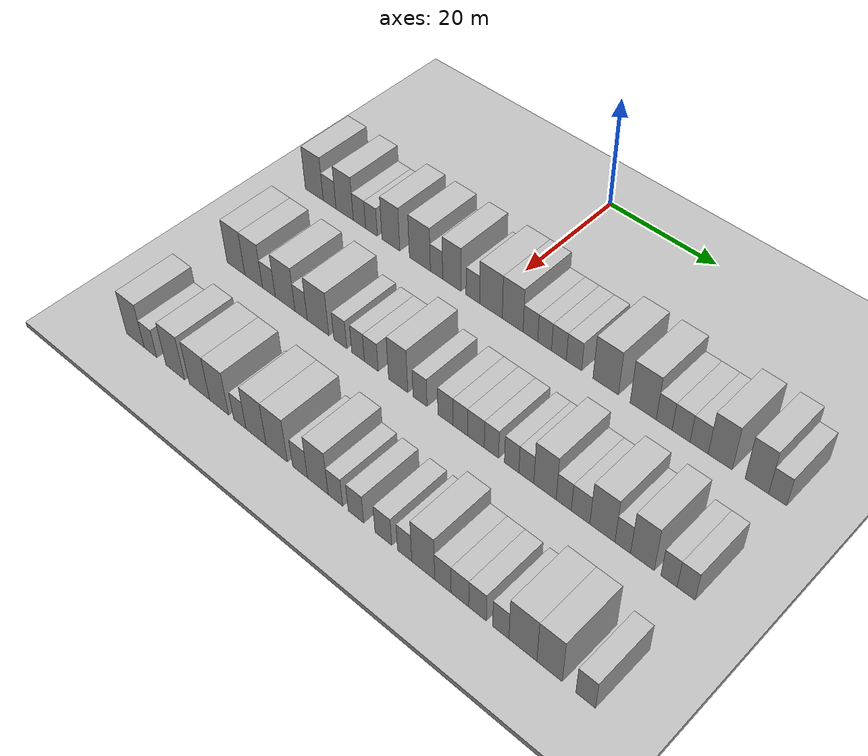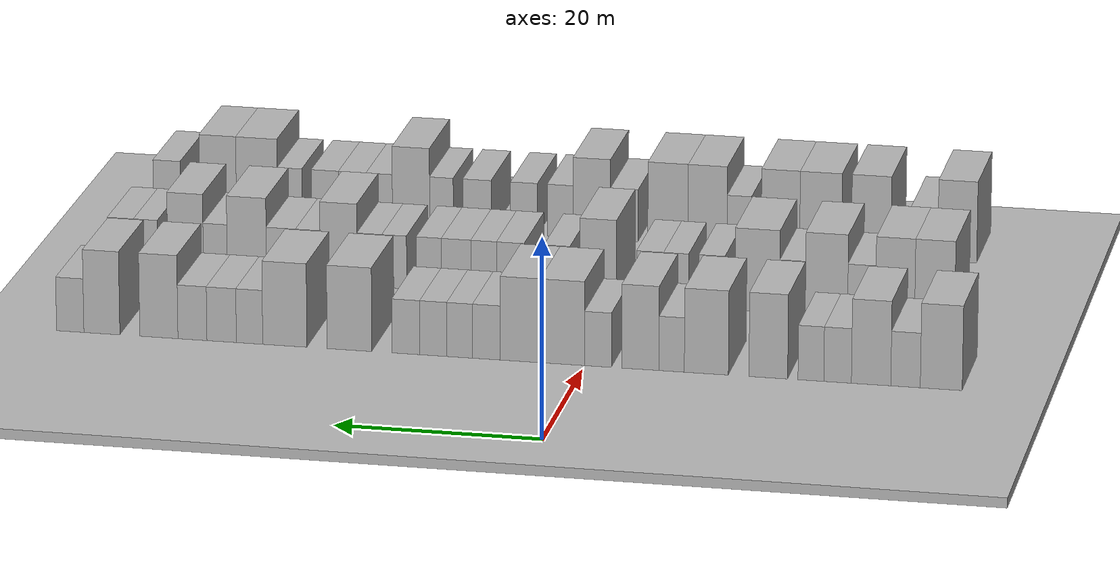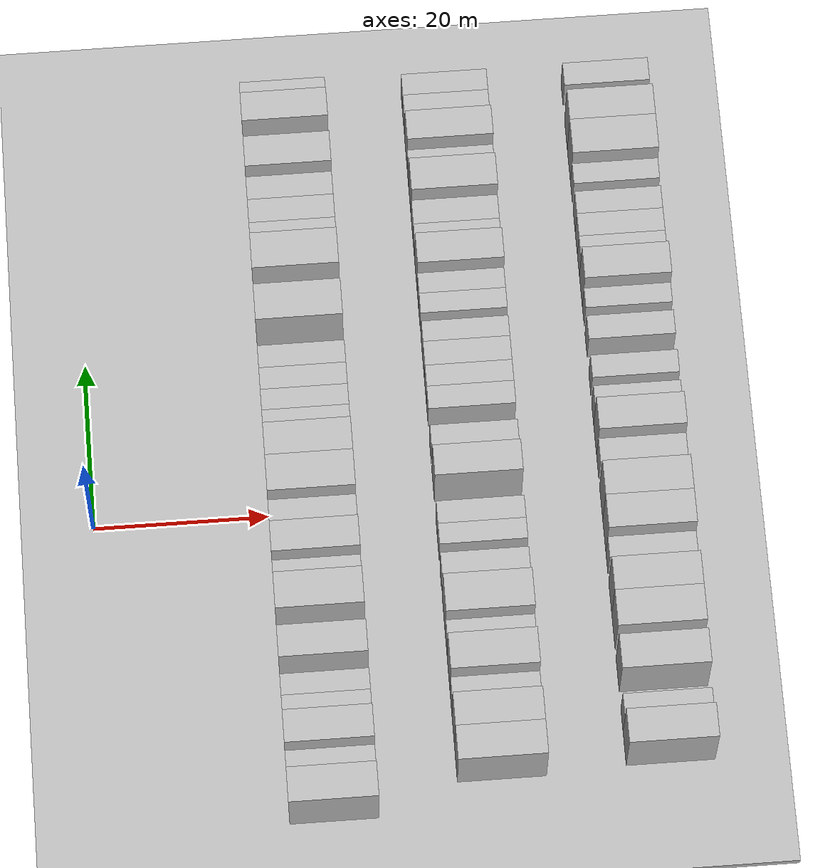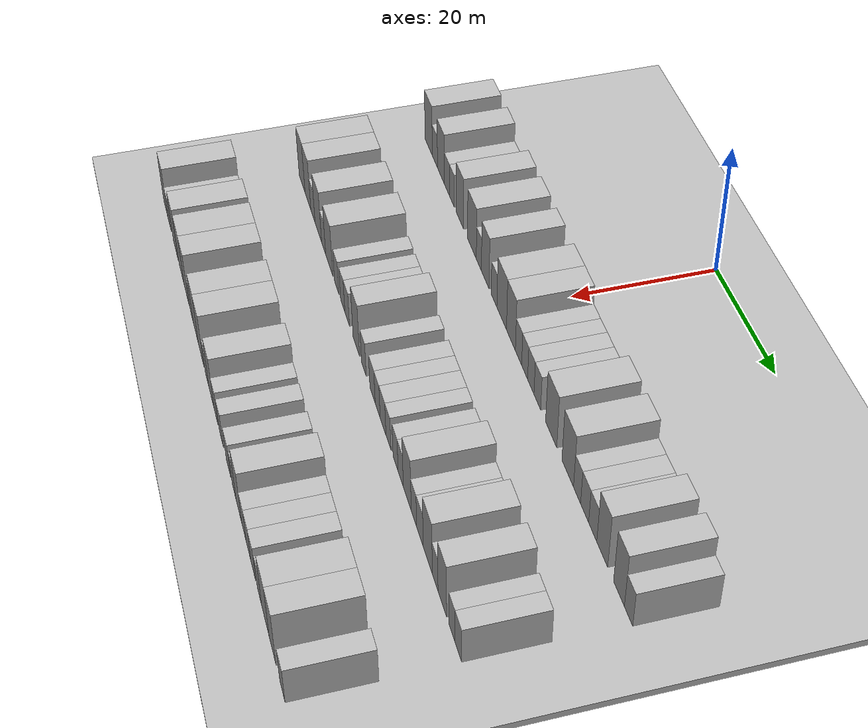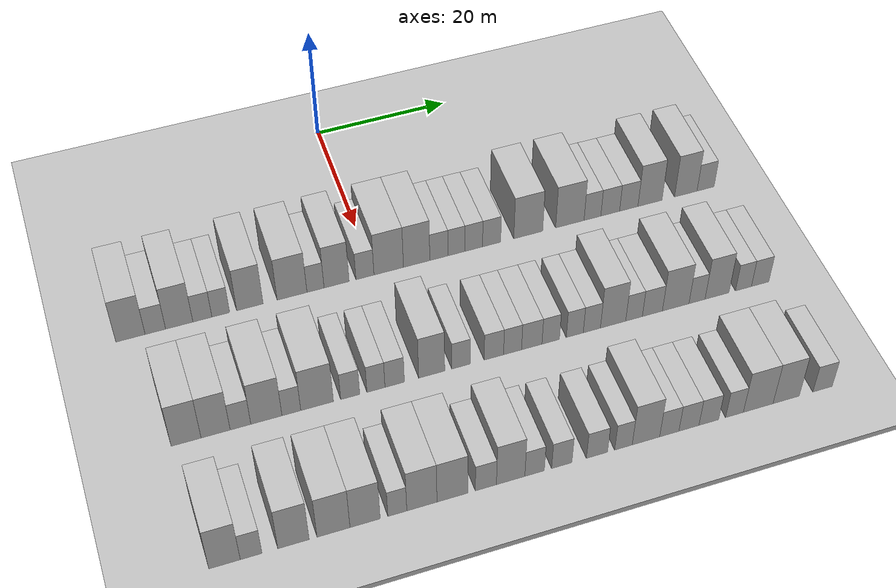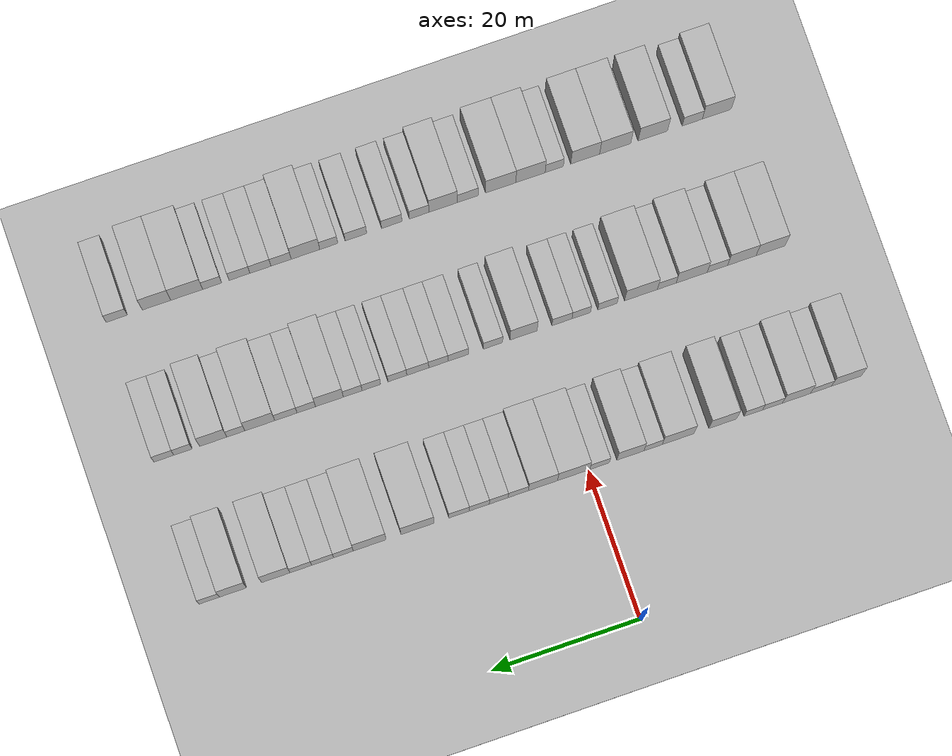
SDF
<sdf version="1.6">
 <world name="default">
  <include><name>ground_plane_1</name><uri>model://HANNAS_ground_plane</uri></include>
  <include>
   <name>ground_plane_2</name>
   <uri>model://HANNAS_ground_plane</uri>
   <pose>100 0 0  0 0 0</pose>
  </include>
  <model name="building_47">
   <static>1</static>
   <pose>25.0000 -34.7910 0 0.000000 0.000000 0.000000</pose>
   <link name="link">
    <pose>0 0 4.50 0 0 0</pose>
    <collision name="collision"><geometry><box><size>10.0000 4.0316 9.0000</size></box></geometry></collision>
    <visual name="visual">
     <cast_shadows>0</cast_shadows>
     <geometry><box><size>10.0000 4.0316 9.0000</size></box></geometry>
     <material>
      <script>
       <uri>model://HANNAS_wall/materials/scripts</uri>
       <uri>model://HANNAS_wall/materials/textures</uri>
       <name>vrc/HANNAS_wall</name>
      </script>
     </material>
    </visual>
   </link>
  </model>
  <model name="building_48">
   <static>1</static>
   <pose>25.0000 -31.3547 0 0.000000 0.000000 0.000000</pose>
   <link name="link">
    <pose>0 0 3.00 0 0 0</pose>
    <collision name="collision"><geometry><box><size>10.0000 2.8410 6.0000</size></box></geometry></collision>
    <visual name="visual">
     <cast_shadows>0</cast_shadows>
     <geometry><box><size>10.0000 2.8410 6.0000</size></box></geometry>
     <material>
      <script>
       <uri>model://HANNAS_wall/materials/scripts</uri>
       <uri>model://HANNAS_wall/materials/textures</uri>
       <name>vrc/HANNAS_wall</name>
      </script>
     </material>
    </visual>
   </link>
  </model>
  <model name="building_49">
   <static>1</static>
   <pose>25.0000 -28.0334 0 0.000000 0.000000 0.000000</pose>
   <link name="link">
    <pose>0 0 4.50 0 0 0</pose>
    <collision name="collision"><geometry><box><size>10.0000 3.8015 9.0000</size></box></geometry></collision>
    <visual name="visual">
     <cast_shadows>0</cast_shadows>
     <geometry><box><size>10.0000 3.8015 9.0000</size></box></geometry>
     <material>
      <script>
       <uri>model://HANNAS_wall/materials/scripts</uri>
       <uri>model://HANNAS_wall/materials/textures</uri>
       <name>vrc/HANNAS_wall</name>
      </script>
     </material>
    </visual>
   </link>
  </model>
  <model name="building_50">
   <static>1</static>
   <pose>25.0000 -24.7990 0 0.000000 0.000000 0.000000</pose>
   <link name="link">
    <pose>0 0 3.00 0 0 0</pose>
    <collision name="collision"><geometry><box><size>10.0000 2.6674 6.0000</size></box></geometry></collision>
    <visual name="visual">
     <cast_shadows>0</cast_shadows>
     <geometry><box><size>10.0000 2.6674 6.0000</size></box></geometry>
     <material>
      <script>
       <uri>model://HANNAS_wall/materials/scripts</uri>
       <uri>model://HANNAS_wall/materials/textures</uri>
       <name>vrc/HANNAS_wall</name>
      </script>
     </material>
    </visual>
   </link>
  </model>
  <model name="building_51">
   <static>1</static>
   <pose>25.0000 -22.2155 0 0.000000 0.000000 0.000000</pose>
   <link name="link">
    <pose>0 0 3.00 0 0 0</pose>
    <collision name="collision"><geometry><box><size>10.0000 2.4995 6.0000</size></box></geometry></collision>
    <visual name="visual">
     <cast_shadows>0</cast_shadows>
     <geometry><box><size>10.0000 2.4995 6.0000</size></box></geometry>
     <material>
      <script>
       <uri>model://HANNAS_wall/materials/scripts</uri>
       <uri>model://HANNAS_wall/materials/textures</uri>
       <name>vrc/HANNAS_wall</name>
      </script>
     </material>
    </visual>
   </link>
  </model>
  <model name="building_52">
   <static>1</static>
   <pose>25.0000 -18.0895 0 0.000000 0.000000 0.000000</pose>
   <link name="link">
    <pose>0 0 4.50 0 0 0</pose>
    <collision name="collision"><geometry><box><size>10.0000 3.7524 9.0000</size></box></geometry></collision>
    <visual name="visual">
     <cast_shadows>0</cast_shadows>
     <geometry><box><size>10.0000 3.7524 9.0000</size></box></geometry>
     <material>
      <script>
       <uri>model://HANNAS_wall/materials/scripts</uri>
       <uri>model://HANNAS_wall/materials/textures</uri>
       <name>vrc/HANNAS_wall</name>
      </script>
     </material>
    </visual>
   </link>
  </model>
  <model name="building_53">
   <static>1</static>
   <pose>25.0000 -12.0707 0 0.000000 0.000000 0.000000</pose>
   <link name="link">
    <pose>0 0 4.50 0 0 0</pose>
    <collision name="collision"><geometry><box><size>10.0000 4.2852 9.0000</size></box></geometry></collision>
    <visual name="visual">
     <cast_shadows>0</cast_shadows>
     <geometry><box><size>10.0000 4.2852 9.0000</size></box></geometry>
     <material>
      <script>
       <uri>model://HANNAS_wall/materials/scripts</uri>
       <uri>model://HANNAS_wall/materials/textures</uri>
       <name>vrc/HANNAS_wall</name>
      </script>
     </material>
    </visual>
   </link>
  </model>
  <model name="building_54">
   <static>1</static>
   <pose>25.0000 -8.6924 0 0.000000 0.000000 0.000000</pose>
   <link name="link">
    <pose>0 0 3.00 0 0 0</pose>
    <collision name="collision"><geometry><box><size>10.0000 2.4713 6.0000</size></box></geometry></collision>
    <visual name="visual">
     <cast_shadows>0</cast_shadows>
     <geometry><box><size>10.0000 2.4713 6.0000</size></box></geometry>
     <material>
      <script>
       <uri>model://HANNAS_wall/materials/scripts</uri>
       <uri>model://HANNAS_wall/materials/textures</uri>
       <name>vrc/HANNAS_wall</name>
      </script>
     </material>
    </visual>
   </link>
  </model>
  <model name="building_55">
   <static>1</static>
   <pose>25.0000 -5.6387 0 0.000000 0.000000 0.000000</pose>
   <link name="link">
    <pose>0 0 4.50 0 0 0</pose>
    <collision name="collision"><geometry><box><size>10.0000 3.6361 9.0000</size></box></geometry></collision>
    <visual name="visual">
     <cast_shadows>0</cast_shadows>
     <geometry><box><size>10.0000 3.6361 9.0000</size></box></geometry>
     <material>
      <script>
       <uri>model://HANNAS_wall/materials/scripts</uri>
       <uri>model://HANNAS_wall/materials/textures</uri>
       <name>vrc/HANNAS_wall</name>
      </script>
     </material>
    </visual>
   </link>
  </model>
  <model name="building_56">
   <static>1</static>
   <pose>25.0000 -1.4994 0 0.000000 0.000000 0.000000</pose>
   <link name="link">
    <pose>0 0 3.00 0 0 0</pose>
    <collision name="collision"><geometry><box><size>10.0000 2.6427 6.0000</size></box></geometry></collision>
    <visual name="visual">
     <cast_shadows>0</cast_shadows>
     <geometry><box><size>10.0000 2.6427 6.0000</size></box></geometry>
     <material>
      <script>
       <uri>model://HANNAS_wall/materials/scripts</uri>
       <uri>model://HANNAS_wall/materials/textures</uri>
       <name>vrc/HANNAS_wall</name>
      </script>
     </material>
    </visual>
   </link>
  </model>
  <model name="building_57">
   <static>1</static>
   <pose>25.0000 1.9931 0 0.000000 0.000000 0.000000</pose>
   <link name="link">
    <pose>0 0 4.50 0 0 0</pose>
    <collision name="collision"><geometry><box><size>10.0000 4.3422 9.0000</size></box></geometry></collision>
    <visual name="visual">
     <cast_shadows>0</cast_shadows>
     <geometry><box><size>10.0000 4.3422 9.0000</size></box></geometry>
     <material>
      <script>
       <uri>model://HANNAS_wall/materials/scripts</uri>
       <uri>model://HANNAS_wall/materials/textures</uri>
       <name>vrc/HANNAS_wall</name>
      </script>
     </material>
    </visual>
   </link>
  </model>
  <model name="building_58">
   <static>1</static>
   <pose>25.0000 6.1227 0 0.000000 0.000000 0.000000</pose>
   <link name="link">
    <pose>0 0 4.50 0 0 0</pose>
    <collision name="collision"><geometry><box><size>10.0000 3.9170 9.0000</size></box></geometry></collision>
    <visual name="visual">
     <cast_shadows>0</cast_shadows>
     <geometry><box><size>10.0000 3.9170 9.0000</size></box></geometry>
     <material>
      <script>
       <uri>model://HANNAS_wall/materials/scripts</uri>
       <uri>model://HANNAS_wall/materials/textures</uri>
       <name>vrc/HANNAS_wall</name>
      </script>
     </material>
    </visual>
   </link>
  </model>
  <model name="building_59">
   <static>1</static>
   <pose>25.0000 9.4353 0 0.000000 0.000000 0.000000</pose>
   <link name="link">
    <pose>0 0 3.00 0 0 0</pose>
    <collision name="collision"><geometry><box><size>10.0000 2.7080 6.0000</size></box></geometry></collision>
    <visual name="visual">
     <cast_shadows>0</cast_shadows>
     <geometry><box><size>10.0000 2.7080 6.0000</size></box></geometry>
     <material>
      <script>
       <uri>model://HANNAS_wall/materials/scripts</uri>
       <uri>model://HANNAS_wall/materials/textures</uri>
       <name>vrc/HANNAS_wall</name>
      </script>
     </material>
    </visual>
   </link>
  </model>
  <model name="building_60">
   <static>1</static>
   <pose>25.0000 12.0577 0 0.000000 0.000000 0.000000</pose>
   <link name="link">
    <pose>0 0 3.00 0 0 0</pose>
    <collision name="collision"><geometry><box><size>10.0000 2.5369 6.0000</size></box></geometry></collision>
    <visual name="visual">
     <cast_shadows>0</cast_shadows>
     <geometry><box><size>10.0000 2.5369 6.0000</size></box></geometry>
     <material>
      <script>
       <uri>model://HANNAS_wall/materials/scripts</uri>
       <uri>model://HANNAS_wall/materials/textures</uri>
       <name>vrc/HANNAS_wall</name>
      </script>
     </material>
    </visual>
   </link>
  </model>
  <model name="building_61">
   <static>1</static>
   <pose>25.0000 14.6599 0 0.000000 0.000000 0.000000</pose>
   <link name="link">
    <pose>0 0 3.00 0 0 0</pose>
    <collision name="collision"><geometry><box><size>10.0000 2.6675 6.0000</size></box></geometry></collision>
    <visual name="visual">
     <cast_shadows>0</cast_shadows>
     <geometry><box><size>10.0000 2.6675 6.0000</size></box></geometry>
     <material>
      <script>
       <uri>model://HANNAS_wall/materials/scripts</uri>
       <uri>model://HANNAS_wall/materials/textures</uri>
       <name>vrc/HANNAS_wall</name>
      </script>
     </material>
    </visual>
   </link>
  </model>
  <model name="building_62">
   <static>1</static>
   <pose>25.0000 17.3658 0 0.000000 0.000000 0.000000</pose>
   <link name="link">
    <pose>0 0 3.00 0 0 0</pose>
    <collision name="collision"><geometry><box><size>10.0000 2.7442 6.0000</size></box></geometry></collision>
    <visual name="visual">
     <cast_shadows>0</cast_shadows>
     <geometry><box><size>10.0000 2.7442 6.0000</size></box></geometry>
     <material>
      <script>
       <uri>model://HANNAS_wall/materials/scripts</uri>
       <uri>model://HANNAS_wall/materials/textures</uri>
       <name>vrc/HANNAS_wall</name>
      </script>
     </material>
    </visual>
   </link>
  </model>
  <model name="building_63">
   <static>1</static>
   <pose>25.0000 22.9496 0 0.000000 0.000000 0.000000</pose>
   <link name="link">
    <pose>0 0 4.50 0 0 0</pose>
    <collision name="collision"><geometry><box><size>10.0000 4.4235 9.0000</size></box></geometry></collision>
    <visual name="visual">
     <cast_shadows>0</cast_shadows>
     <geometry><box><size>10.0000 4.4235 9.0000</size></box></geometry>
     <material>
      <script>
       <uri>model://HANNAS_wall/materials/scripts</uri>
       <uri>model://HANNAS_wall/materials/textures</uri>
       <name>vrc/HANNAS_wall</name>
      </script>
     </material>
    </visual>
   </link>
  </model>
  <model name="building_64">
   <static>1</static>
   <pose>25.0000 29.3589 0 0.000000 0.000000 0.000000</pose>
   <link name="link">
    <pose>0 0 4.50 0 0 0</pose>
    <collision name="collision"><geometry><box><size>10.0000 4.3949 9.0000</size></box></geometry></collision>
    <visual name="visual">
     <cast_shadows>0</cast_shadows>
     <geometry><box><size>10.0000 4.3949 9.0000</size></box></geometry>
     <material>
      <script>
       <uri>model://HANNAS_wall/materials/scripts</uri>
       <uri>model://HANNAS_wall/materials/textures</uri>
       <name>vrc/HANNAS_wall</name>
      </script>
     </material>
    </visual>
   </link>
  </model>
  <model name="building_65">
   <static>1</static>
   <pose>25.0000 32.8675 0 0.000000 0.000000 0.000000</pose>
   <link name="link">
    <pose>0 0 3.00 0 0 0</pose>
    <collision name="collision"><geometry><box><size>10.0000 2.6224 6.0000</size></box></geometry></collision>
    <visual name="visual">
     <cast_shadows>0</cast_shadows>
     <geometry><box><size>10.0000 2.6224 6.0000</size></box></geometry>
     <material>
      <script>
       <uri>model://HANNAS_wall/materials/scripts</uri>
       <uri>model://HANNAS_wall/materials/textures</uri>
       <name>vrc/HANNAS_wall</name>
      </script>
     </material>
    </visual>
   </link>
  </model>
  <model name="building_66">
   <static>1</static>
   <pose>25.0000 35.6448 0 0.000000 0.000000 0.000000</pose>
   <link name="link">
    <pose>0 0 3.00 0 0 0</pose>
    <collision name="collision"><geometry><box><size>10.0000 2.9322 6.0000</size></box></geometry></collision>
    <visual name="visual">
     <cast_shadows>0</cast_shadows>
     <geometry><box><size>10.0000 2.9322 6.0000</size></box></geometry>
     <material>
      <script>
       <uri>model://HANNAS_wall/materials/scripts</uri>
       <uri>model://HANNAS_wall/materials/textures</uri>
       <name>vrc/HANNAS_wall</name>
      </script>
     </material>
    </visual>
   </link>
  </model>
  <model name="building_67">
   <static>1</static>
   <pose>25.0000 38.5569 0 0.000000 0.000000 0.000000</pose>
   <link name="link">
    <pose>0 0 3.00 0 0 0</pose>
    <collision name="collision"><geometry><box><size>10.0000 2.8921 6.0000</size></box></geometry></collision>
    <visual name="visual">
     <cast_shadows>0</cast_shadows>
     <geometry><box><size>10.0000 2.8921 6.0000</size></box></geometry>
     <material>
      <script>
       <uri>model://HANNAS_wall/materials/scripts</uri>
       <uri>model://HANNAS_wall/materials/textures</uri>
       <name>vrc/HANNAS_wall</name>
      </script>
     </material>
    </visual>
   </link>
  </model>
  <model name="building_68">
   <static>1</static>
   <pose>25.0000 41.9064 0 0.000000 0.000000 0.000000</pose>
   <link name="link">
    <pose>0 0 4.50 0 0 0</pose>
    <collision name="collision"><geometry><box><size>10.0000 3.8069 9.0000</size></box></geometry></collision>
    <visual name="visual">
     <cast_shadows>0</cast_shadows>
     <geometry><box><size>10.0000 3.8069 9.0000</size></box></geometry>
     <material>
      <script>
       <uri>model://HANNAS_wall/materials/scripts</uri>
       <uri>model://HANNAS_wall/materials/textures</uri>
       <name>vrc/HANNAS_wall</name>
      </script>
     </material>
    </visual>
   </link>
  </model>
  <model name="building_69">
   <static>1</static>
   <pose>25.0000 47.6128 0 0.000000 0.000000 0.000000</pose>
   <link name="link">
    <pose>0 0 4.50 0 0 0</pose>
    <collision name="collision"><geometry><box><size>10.0000 3.6060 9.0000</size></box></geometry></collision>
    <visual name="visual">
     <cast_shadows>0</cast_shadows>
     <geometry><box><size>10.0000 3.6060 9.0000</size></box></geometry>
     <material>
      <script>
       <uri>model://HANNAS_wall/materials/scripts</uri>
       <uri>model://HANNAS_wall/materials/textures</uri>
       <name>vrc/HANNAS_wall</name>
      </script>
     </material>
    </visual>
   </link>
  </model>
  <model name="building_70">
   <static>1</static>
   <pose>25.0000 50.7858 0 0.000000 0.000000 0.000000</pose>
   <link name="link">
    <pose>0 0 3.00 0 0 0</pose>
    <collision name="collision"><geometry><box><size>10.0000 2.7400 6.0000</size></box></geometry></collision>
    <visual name="visual">
     <cast_shadows>0</cast_shadows>
     <geometry><box><size>10.0000 2.7400 6.0000</size></box></geometry>
     <material>
      <script>
       <uri>model://HANNAS_wall/materials/scripts</uri>
       <uri>model://HANNAS_wall/materials/textures</uri>
       <name>vrc/HANNAS_wall</name>
      </script>
     </material>
    </visual>
   </link>
  </model>
  <model name="building_169">
   <static>1</static>
   <pose>44.0000 -31.3206 0 0.000000 0.000000 0.000000</pose>
   <link name="link">
    <pose>0 0 4.50 0 0 0</pose>
    <collision name="collision"><geometry><box><size>10.0000 3.9457 9.0000</size></box></geometry></collision>
    <visual name="visual">
     <cast_shadows>0</cast_shadows>
     <geometry><box><size>10.0000 3.9457 9.0000</size></box></geometry>
     <material>
      <script>
       <uri>model://HANNAS_wall/materials/scripts</uri>
       <uri>model://HANNAS_wall/materials/textures</uri>
       <name>vrc/HANNAS_wall</name>
      </script>
     </material>
    </visual>
   </link>
  </model>
  <model name="building_170">
   <static>1</static>
   <pose>44.0000 -27.4151 0 0.000000 0.000000 0.000000</pose>
   <link name="link">
    <pose>0 0 4.50 0 0 0</pose>
    <collision name="collision"><geometry><box><size>10.0000 3.8653 9.0000</size></box></geometry></collision>
    <visual name="visual">
     <cast_shadows>0</cast_shadows>
     <geometry><box><size>10.0000 3.8653 9.0000</size></box></geometry>
     <material>
      <script>
       <uri>model://HANNAS_wall/materials/scripts</uri>
       <uri>model://HANNAS_wall/materials/textures</uri>
       <name>vrc/HANNAS_wall</name>
      </script>
     </material>
    </visual>
   </link>
  </model>
  <model name="building_171">
   <static>1</static>
   <pose>44.0000 -24.1025 0 0.000000 0.000000 0.000000</pose>
   <link name="link">
    <pose>0 0 3.00 0 0 0</pose>
    <collision name="collision"><geometry><box><size>10.0000 2.7599 6.0000</size></box></geometry></collision>
    <visual name="visual">
     <cast_shadows>0</cast_shadows>
     <geometry><box><size>10.0000 2.7599 6.0000</size></box></geometry>
     <material>
      <script>
       <uri>model://HANNAS_wall/materials/scripts</uri>
       <uri>model://HANNAS_wall/materials/textures</uri>
       <name>vrc/HANNAS_wall</name>
      </script>
     </material>
    </visual>
   </link>
  </model>
  <model name="building_172">
   <static>1</static>
   <pose>44.0000 -20.6267 0 0.000000 0.000000 0.000000</pose>
   <link name="link">
    <pose>0 0 4.50 0 0 0</pose>
    <collision name="collision"><geometry><box><size>10.0000 4.1917 9.0000</size></box></geometry></collision>
    <visual name="visual">
     <cast_shadows>0</cast_shadows>
     <geometry><box><size>10.0000 4.1917 9.0000</size></box></geometry>
     <material>
      <script>
       <uri>model://HANNAS_wall/materials/scripts</uri>
       <uri>model://HANNAS_wall/materials/textures</uri>
       <name>vrc/HANNAS_wall</name>
      </script>
     </material>
    </visual>
   </link>
  </model>
  <model name="building_173">
   <static>1</static>
   <pose>44.0000 -17.2548 0 0.000000 0.000000 0.000000</pose>
   <link name="link">
    <pose>0 0 3.00 0 0 0</pose>
    <collision name="collision"><geometry><box><size>10.0000 2.5522 6.0000</size></box></geometry></collision>
    <visual name="visual">
     <cast_shadows>0</cast_shadows>
     <geometry><box><size>10.0000 2.5522 6.0000</size></box></geometry>
     <material>
      <script>
       <uri>model://HANNAS_wall/materials/scripts</uri>
       <uri>model://HANNAS_wall/materials/textures</uri>
       <name>vrc/HANNAS_wall</name>
      </script>
     </material>
    </visual>
   </link>
  </model>
  <model name="building_174">
   <static>1</static>
   <pose>44.0000 -13.7533 0 0.000000 0.000000 0.000000</pose>
   <link name="link">
    <pose>0 0 4.50 0 0 0</pose>
    <collision name="collision"><geometry><box><size>10.0000 4.4508 9.0000</size></box></geometry></collision>
    <visual name="visual">
     <cast_shadows>0</cast_shadows>
     <geometry><box><size>10.0000 4.4508 9.0000</size></box></geometry>
     <material>
      <script>
       <uri>model://HANNAS_wall/materials/scripts</uri>
       <uri>model://HANNAS_wall/materials/textures</uri>
       <name>vrc/HANNAS_wall</name>
      </script>
     </material>
    </visual>
   </link>
  </model>
  <model name="building_175">
   <static>1</static>
   <pose>44.0000 -9.2214 0 0.000000 0.000000 0.000000</pose>
   <link name="link">
    <pose>0 0 3.00 0 0 0</pose>
    <collision name="collision"><geometry><box><size>10.0000 2.6130 6.0000</size></box></geometry></collision>
    <visual name="visual">
     <cast_shadows>0</cast_shadows>
     <geometry><box><size>10.0000 2.6130 6.0000</size></box></geometry>
     <material>
      <script>
       <uri>model://HANNAS_wall/materials/scripts</uri>
       <uri>model://HANNAS_wall/materials/textures</uri>
       <name>vrc/HANNAS_wall</name>
      </script>
     </material>
    </visual>
   </link>
  </model>
  <model name="building_176">
   <static>1</static>
   <pose>44.0000 -5.6659 0 0.000000 0.000000 0.000000</pose>
   <link name="link">
    <pose>0 0 3.00 0 0 0</pose>
    <collision name="collision"><geometry><box><size>10.0000 2.4982 6.0000</size></box></geometry></collision>
    <visual name="visual">
     <cast_shadows>0</cast_shadows>
     <geometry><box><size>10.0000 2.4982 6.0000</size></box></geometry>
     <material>
      <script>
       <uri>model://HANNAS_wall/materials/scripts</uri>
       <uri>model://HANNAS_wall/materials/textures</uri>
       <name>vrc/HANNAS_wall</name>
      </script>
     </material>
    </visual>
   </link>
  </model>
  <model name="building_177">
   <static>1</static>
   <pose>44.0000 -3.0662 0 0.000000 0.000000 0.000000</pose>
   <link name="link">
    <pose>0 0 3.00 0 0 0</pose>
    <collision name="collision"><geometry><box><size>10.0000 2.7012 6.0000</size></box></geometry></collision>
    <visual name="visual">
     <cast_shadows>0</cast_shadows>
     <geometry><box><size>10.0000 2.7012 6.0000</size></box></geometry>
     <material>
      <script>
       <uri>model://HANNAS_wall/materials/scripts</uri>
       <uri>model://HANNAS_wall/materials/textures</uri>
       <name>vrc/HANNAS_wall</name>
      </script>
     </material>
    </visual>
   </link>
  </model>
  <model name="building_178">
   <static>1</static>
   <pose>44.0000 2.1153 0 0.000000 0.000000 0.000000</pose>
   <link name="link">
    <pose>0 0 4.50 0 0 0</pose>
    <collision name="collision"><geometry><box><size>10.0000 3.6617 9.0000</size></box></geometry></collision>
    <visual name="visual">
     <cast_shadows>0</cast_shadows>
     <geometry><box><size>10.0000 3.6617 9.0000</size></box></geometry>
     <material>
      <script>
       <uri>model://HANNAS_wall/materials/scripts</uri>
       <uri>model://HANNAS_wall/materials/textures</uri>
       <name>vrc/HANNAS_wall</name>
      </script>
     </material>
    </visual>
   </link>
  </model>
  <model name="building_179">
   <static>1</static>
   <pose>44.0000 6.2461 0 0.000000 0.000000 0.000000</pose>
   <link name="link">
    <pose>0 0 3.00 0 0 0</pose>
    <collision name="collision"><geometry><box><size>10.0000 2.6001 6.0000</size></box></geometry></collision>
    <visual name="visual">
     <cast_shadows>0</cast_shadows>
     <geometry><box><size>10.0000 2.6001 6.0000</size></box></geometry>
     <material>
      <script>
       <uri>model://HANNAS_wall/materials/scripts</uri>
       <uri>model://HANNAS_wall/materials/textures</uri>
       <name>vrc/HANNAS_wall</name>
      </script>
     </material>
    </visual>
   </link>
  </model>
  <model name="building_180">
   <static>1</static>
   <pose>44.0000 10.9340 0 0.000000 0.000000 0.000000</pose>
   <link name="link">
    <pose>0 0 3.00 0 0 0</pose>
    <collision name="collision"><geometry><box><size>10.0000 2.7756 6.0000</size></box></geometry></collision>
    <visual name="visual">
     <cast_shadows>0</cast_shadows>
     <geometry><box><size>10.0000 2.7756 6.0000</size></box></geometry>
     <material>
      <script>
       <uri>model://HANNAS_wall/materials/scripts</uri>
       <uri>model://HANNAS_wall/materials/textures</uri>
       <name>vrc/HANNAS_wall</name>
      </script>
     </material>
    </visual>
   </link>
  </model>
  <model name="building_181">
   <static>1</static>
   <pose>44.0000 13.6160 0 0.000000 0.000000 0.000000</pose>
   <link name="link">
    <pose>0 0 3.00 0 0 0</pose>
    <collision name="collision"><geometry><box><size>10.0000 2.5884 6.0000</size></box></geometry></collision>
    <visual name="visual">
     <cast_shadows>0</cast_shadows>
     <geometry><box><size>10.0000 2.5884 6.0000</size></box></geometry>
     <material>
      <script>
       <uri>model://HANNAS_wall/materials/scripts</uri>
       <uri>model://HANNAS_wall/materials/textures</uri>
       <name>vrc/HANNAS_wall</name>
      </script>
     </material>
    </visual>
   </link>
  </model>
  <model name="building_182">
   <static>1</static>
   <pose>44.0000 16.3873 0 0.000000 0.000000 0.000000</pose>
   <link name="link">
    <pose>0 0 3.00 0 0 0</pose>
    <collision name="collision"><geometry><box><size>10.0000 2.9542 6.0000</size></box></geometry></collision>
    <visual name="visual">
     <cast_shadows>0</cast_shadows>
     <geometry><box><size>10.0000 2.9542 6.0000</size></box></geometry>
     <material>
      <script>
       <uri>model://HANNAS_wall/materials/scripts</uri>
       <uri>model://HANNAS_wall/materials/textures</uri>
       <name>vrc/HANNAS_wall</name>
      </script>
     </material>
    </visual>
   </link>
  </model>
  <model name="building_183">
   <static>1</static>
   <pose>44.0000 19.1311 0 0.000000 0.000000 0.000000</pose>
   <link name="link">
    <pose>0 0 3.00 0 0 0</pose>
    <collision name="collision"><geometry><box><size>10.0000 2.5336 6.0000</size></box></geometry></collision>
    <visual name="visual">
     <cast_shadows>0</cast_shadows>
     <geometry><box><size>10.0000 2.5336 6.0000</size></box></geometry>
     <material>
      <script>
       <uri>model://HANNAS_wall/materials/scripts</uri>
       <uri>model://HANNAS_wall/materials/textures</uri>
       <name>vrc/HANNAS_wall</name>
      </script>
     </material>
    </visual>
   </link>
  </model>
  <model name="building_184">
   <static>1</static>
   <pose>44.0000 22.6398 0 0.000000 0.000000 0.000000</pose>
   <link name="link">
    <pose>0 0 3.00 0 0 0</pose>
    <collision name="collision"><geometry><box><size>10.0000 2.4838 6.0000</size></box></geometry></collision>
    <visual name="visual">
     <cast_shadows>0</cast_shadows>
     <geometry><box><size>10.0000 2.4838 6.0000</size></box></geometry>
     <material>
      <script>
       <uri>model://HANNAS_wall/materials/scripts</uri>
       <uri>model://HANNAS_wall/materials/textures</uri>
       <name>vrc/HANNAS_wall</name>
      </script>
     </material>
    </visual>
   </link>
  </model>
  <model name="building_185">
   <static>1</static>
   <pose>44.0000 25.1430 0 0.000000 0.000000 0.000000</pose>
   <link name="link">
    <pose>0 0 3.00 0 0 0</pose>
    <collision name="collision"><geometry><box><size>10.0000 2.5226 6.0000</size></box></geometry></collision>
    <visual name="visual">
     <cast_shadows>0</cast_shadows>
     <geometry><box><size>10.0000 2.5226 6.0000</size></box></geometry>
     <material>
      <script>
       <uri>model://HANNAS_wall/materials/scripts</uri>
       <uri>model://HANNAS_wall/materials/textures</uri>
       <name>vrc/HANNAS_wall</name>
      </script>
     </material>
    </visual>
   </link>
  </model>
  <model name="building_186">
   <static>1</static>
   <pose>44.0000 28.2769 0 0.000000 0.000000 0.000000</pose>
   <link name="link">
    <pose>0 0 4.50 0 0 0</pose>
    <collision name="collision"><geometry><box><size>10.0000 3.7451 9.0000</size></box></geometry></collision>
    <visual name="visual">
     <cast_shadows>0</cast_shadows>
     <geometry><box><size>10.0000 3.7451 9.0000</size></box></geometry>
     <material>
      <script>
       <uri>model://HANNAS_wall/materials/scripts</uri>
       <uri>model://HANNAS_wall/materials/textures</uri>
       <name>vrc/HANNAS_wall</name>
      </script>
     </material>
    </visual>
   </link>
  </model>
  <model name="building_187">
   <static>1</static>
   <pose>44.0000 31.3867 0 0.000000 0.000000 0.000000</pose>
   <link name="link">
    <pose>0 0 3.00 0 0 0</pose>
    <collision name="collision"><geometry><box><size>10.0000 2.4745 6.0000</size></box></geometry></collision>
    <visual name="visual">
     <cast_shadows>0</cast_shadows>
     <geometry><box><size>10.0000 2.4745 6.0000</size></box></geometry>
     <material>
      <script>
       <uri>model://HANNAS_wall/materials/scripts</uri>
       <uri>model://HANNAS_wall/materials/textures</uri>
       <name>vrc/HANNAS_wall</name>
      </script>
     </material>
    </visual>
   </link>
  </model>
  <model name="building_188">
   <static>1</static>
   <pose>44.0000 34.1231 0 0.000000 0.000000 0.000000</pose>
   <link name="link">
    <pose>0 0 3.00 0 0 0</pose>
    <collision name="collision"><geometry><box><size>10.0000 2.9984 6.0000</size></box></geometry></collision>
    <visual name="visual">
     <cast_shadows>0</cast_shadows>
     <geometry><box><size>10.0000 2.9984 6.0000</size></box></geometry>
     <material>
      <script>
       <uri>model://HANNAS_wall/materials/scripts</uri>
       <uri>model://HANNAS_wall/materials/textures</uri>
       <name>vrc/HANNAS_wall</name>
      </script>
     </material>
    </visual>
   </link>
  </model>
  <model name="building_189">
   <static>1</static>
   <pose>44.0000 37.6210 0 0.000000 0.000000 0.000000</pose>
   <link name="link">
    <pose>0 0 4.50 0 0 0</pose>
    <collision name="collision"><geometry><box><size>10.0000 3.9974 9.0000</size></box></geometry></collision>
    <visual name="visual">
     <cast_shadows>0</cast_shadows>
     <geometry><box><size>10.0000 3.9974 9.0000</size></box></geometry>
     <material>
      <script>
       <uri>model://HANNAS_wall/materials/scripts</uri>
       <uri>model://HANNAS_wall/materials/textures</uri>
       <name>vrc/HANNAS_wall</name>
      </script>
     </material>
    </visual>
   </link>
  </model>
  <model name="building_190">
   <static>1</static>
   <pose>44.0000 40.8362 0 0.000000 0.000000 0.000000</pose>
   <link name="link">
    <pose>0 0 3.00 0 0 0</pose>
    <collision name="collision"><geometry><box><size>10.0000 2.4330 6.0000</size></box></geometry></collision>
    <visual name="visual">
     <cast_shadows>0</cast_shadows>
     <geometry><box><size>10.0000 2.4330 6.0000</size></box></geometry>
     <material>
      <script>
       <uri>model://HANNAS_wall/materials/scripts</uri>
       <uri>model://HANNAS_wall/materials/textures</uri>
       <name>vrc/HANNAS_wall</name>
      </script>
     </material>
    </visual>
   </link>
  </model>
  <model name="building_191">
   <static>1</static>
   <pose>44.0000 43.8739 0 0.000000 0.000000 0.000000</pose>
   <link name="link">
    <pose>0 0 4.50 0 0 0</pose>
    <collision name="collision"><geometry><box><size>10.0000 3.6424 9.0000</size></box></geometry></collision>
    <visual name="visual">
     <cast_shadows>0</cast_shadows>
     <geometry><box><size>10.0000 3.6424 9.0000</size></box></geometry>
     <material>
      <script>
       <uri>model://HANNAS_wall/materials/scripts</uri>
       <uri>model://HANNAS_wall/materials/textures</uri>
       <name>vrc/HANNAS_wall</name>
      </script>
     </material>
    </visual>
   </link>
  </model>
  <model name="building_192">
   <static>1</static>
   <pose>44.0000 47.9178 0 0.000000 0.000000 0.000000</pose>
   <link name="link">
    <pose>0 0 3.00 0 0 0</pose>
    <collision name="collision"><geometry><box><size>10.0000 2.4453 6.0000</size></box></geometry></collision>
    <visual name="visual">
     <cast_shadows>0</cast_shadows>
     <geometry><box><size>10.0000 2.4453 6.0000</size></box></geometry>
     <material>
      <script>
       <uri>model://HANNAS_wall/materials/scripts</uri>
       <uri>model://HANNAS_wall/materials/textures</uri>
       <name>vrc/HANNAS_wall</name>
      </script>
     </material>
    </visual>
   </link>
  </model>
  <model name="building_193">
   <static>1</static>
   <pose>44.0000 50.4812 0 0.000000 0.000000 0.000000</pose>
   <link name="link">
    <pose>0 0 3.00 0 0 0</pose>
    <collision name="collision"><geometry><box><size>10.0000 2.6816 6.0000</size></box></geometry></collision>
    <visual name="visual">
     <cast_shadows>0</cast_shadows>
     <geometry><box><size>10.0000 2.6816 6.0000</size></box></geometry>
     <material>
      <script>
       <uri>model://HANNAS_wall/materials/scripts</uri>
       <uri>model://HANNAS_wall/materials/textures</uri>
       <name>vrc/HANNAS_wall</name>
      </script>
     </material>
    </visual>
   </link>
  </model>
  <model name="building_290">
   <static>1</static>
   <pose>63.0000 -30.7751 0 0.000000 0.000000 0.000000</pose>
   <link name="link">
    <pose>0 0 4.50 0 0 0</pose>
    <collision name="collision"><geometry><box><size>10.0000 3.9394 9.0000</size></box></geometry></collision>
    <visual name="visual">
     <cast_shadows>0</cast_shadows>
     <geometry><box><size>10.0000 3.9394 9.0000</size></box></geometry>
     <material>
      <script>
       <uri>model://HANNAS_wall/materials/scripts</uri>
       <uri>model://HANNAS_wall/materials/textures</uri>
       <name>vrc/HANNAS_wall</name>
      </script>
     </material>
    </visual>
   </link>
  </model>
  <model name="building_291">
   <static>1</static>
   <pose>63.0000 -27.4370 0 0.000000 0.000000 0.000000</pose>
   <link name="link">
    <pose>0 0 3.00 0 0 0</pose>
    <collision name="collision"><geometry><box><size>10.0000 2.7369 6.0000</size></box></geometry></collision>
    <visual name="visual">
     <cast_shadows>0</cast_shadows>
     <geometry><box><size>10.0000 2.7369 6.0000</size></box></geometry>
     <material>
      <script>
       <uri>model://HANNAS_wall/materials/scripts</uri>
       <uri>model://HANNAS_wall/materials/textures</uri>
       <name>vrc/HANNAS_wall</name>
      </script>
     </material>
    </visual>
   </link>
  </model>
  <model name="building_292">
   <static>1</static>
   <pose>63.0000 -22.0675 0 0.000000 0.000000 0.000000</pose>
   <link name="link">
    <pose>0 0 4.50 0 0 0</pose>
    <collision name="collision"><geometry><box><size>10.0000 4.0021 9.0000</size></box></geometry></collision>
    <visual name="visual">
     <cast_shadows>0</cast_shadows>
     <geometry><box><size>10.0000 4.0021 9.0000</size></box></geometry>
     <material>
      <script>
       <uri>model://HANNAS_wall/materials/scripts</uri>
       <uri>model://HANNAS_wall/materials/textures</uri>
       <name>vrc/HANNAS_wall</name>
      </script>
     </material>
    </visual>
   </link>
  </model>
  <model name="building_293">
   <static>1</static>
   <pose>63.0000 -16.9425 0 0.000000 0.000000 0.000000</pose>
   <link name="link">
    <pose>0 0 4.50 0 0 0</pose>
    <collision name="collision"><geometry><box><size>10.0000 4.2478 9.0000</size></box></geometry></collision>
    <visual name="visual">
     <cast_shadows>0</cast_shadows>
     <geometry><box><size>10.0000 4.2478 9.0000</size></box></geometry>
     <material>
      <script>
       <uri>model://HANNAS_wall/materials/scripts</uri>
       <uri>model://HANNAS_wall/materials/textures</uri>
       <name>vrc/HANNAS_wall</name>
      </script>
     </material>
    </visual>
   </link>
  </model>
  <model name="building_294">
   <static>1</static>
   <pose>63.0000 -12.8574 0 0.000000 0.000000 0.000000</pose>
   <link name="link">
    <pose>0 0 4.50 0 0 0</pose>
    <collision name="collision"><geometry><box><size>10.0000 3.9224 9.0000</size></box></geometry></collision>
    <visual name="visual">
     <cast_shadows>0</cast_shadows>
     <geometry><box><size>10.0000 3.9224 9.0000</size></box></geometry>
     <material>
      <script>
       <uri>model://HANNAS_wall/materials/scripts</uri>
       <uri>model://HANNAS_wall/materials/textures</uri>
       <name>vrc/HANNAS_wall</name>
      </script>
     </material>
    </visual>
   </link>
  </model>
  <model name="building_295">
   <static>1</static>
   <pose>63.0000 -8.6562 0 0.000000 0.000000 0.000000</pose>
   <link name="link">
    <pose>0 0 3.00 0 0 0</pose>
    <collision name="collision"><geometry><box><size>10.0000 2.4801 6.0000</size></box></geometry></collision>
    <visual name="visual">
     <cast_shadows>0</cast_shadows>
     <geometry><box><size>10.0000 2.4801 6.0000</size></box></geometry>
     <material>
      <script>
       <uri>model://HANNAS_wall/materials/scripts</uri>
       <uri>model://HANNAS_wall/materials/textures</uri>
       <name>vrc/HANNAS_wall</name>
      </script>
     </material>
    </visual>
   </link>
  </model>
  <model name="building_296">
   <static>1</static>
   <pose>63.0000 -5.4259 0 0.000000 0.000000 0.000000</pose>
   <link name="link">
    <pose>0 0 4.50 0 0 0</pose>
    <collision name="collision"><geometry><box><size>10.0000 3.9805 9.0000</size></box></geometry></collision>
    <visual name="visual">
     <cast_shadows>0</cast_shadows>
     <geometry><box><size>10.0000 3.9805 9.0000</size></box></geometry>
     <material>
      <script>
       <uri>model://HANNAS_wall/materials/scripts</uri>
       <uri>model://HANNAS_wall/materials/textures</uri>
       <name>vrc/HANNAS_wall</name>
      </script>
     </material>
    </visual>
   </link>
  </model>
  <model name="building_297">
   <static>1</static>
   <pose>63.0000 -1.3835 0 0.000000 0.000000 0.000000</pose>
   <link name="link">
    <pose>0 0 4.50 0 0 0</pose>
    <collision name="collision"><geometry><box><size>10.0000 4.1045 9.0000</size></box></geometry></collision>
    <visual name="visual">
     <cast_shadows>0</cast_shadows>
     <geometry><box><size>10.0000 4.1045 9.0000</size></box></geometry>
     <material>
      <script>
       <uri>model://HANNAS_wall/materials/scripts</uri>
       <uri>model://HANNAS_wall/materials/textures</uri>
       <name>vrc/HANNAS_wall</name>
      </script>
     </material>
    </visual>
   </link>
  </model>
  <model name="building_298">
   <static>1</static>
   <pose>63.0000 3.0843 0 0.000000 0.000000 0.000000</pose>
   <link name="link">
    <pose>0 0 3.00 0 0 0</pose>
    <collision name="collision"><geometry><box><size>10.0000 2.8312 6.0000</size></box></geometry></collision>
    <visual name="visual">
     <cast_shadows>0</cast_shadows>
     <geometry><box><size>10.0000 2.8312 6.0000</size></box></geometry>
     <material>
      <script>
       <uri>model://HANNAS_wall/materials/scripts</uri>
       <uri>model://HANNAS_wall/materials/textures</uri>
       <name>vrc/HANNAS_wall</name>
      </script>
     </material>
    </visual>
   </link>
  </model>
  <model name="building_299">
   <static>1</static>
   <pose>63.0000 6.4202 0 0.000000 0.000000 0.000000</pose>
   <link name="link">
    <pose>0 0 4.50 0 0 0</pose>
    <collision name="collision"><geometry><box><size>10.0000 3.8405 9.0000</size></box></geometry></collision>
    <visual name="visual">
     <cast_shadows>0</cast_shadows>
     <geometry><box><size>10.0000 3.8405 9.0000</size></box></geometry>
     <material>
      <script>
       <uri>model://HANNAS_wall/materials/scripts</uri>
       <uri>model://HANNAS_wall/materials/textures</uri>
       <name>vrc/HANNAS_wall</name>
      </script>
     </material>
    </visual>
   </link>
  </model>
  <model name="building_300">
   <static>1</static>
   <pose>63.0000 9.6641 0 0.000000 0.000000 0.000000</pose>
   <link name="link">
    <pose>0 0 3.00 0 0 0</pose>
    <collision name="collision"><geometry><box><size>10.0000 2.6473 6.0000</size></box></geometry></collision>
    <visual name="visual">
     <cast_shadows>0</cast_shadows>
     <geometry><box><size>10.0000 2.6473 6.0000</size></box></geometry>
     <material>
      <script>
       <uri>model://HANNAS_wall/materials/scripts</uri>
       <uri>model://HANNAS_wall/materials/textures</uri>
       <name>vrc/HANNAS_wall</name>
      </script>
     </material>
    </visual>
   </link>
  </model>
  <model name="building_301">
   <static>1</static>
   <pose>63.0000 13.3752 0 0.000000 0.000000 0.000000</pose>
   <link name="link">
    <pose>0 0 3.00 0 0 0</pose>
    <collision name="collision"><geometry><box><size>10.0000 2.7748 6.0000</size></box></geometry></collision>
    <visual name="visual">
     <cast_shadows>0</cast_shadows>
     <geometry><box><size>10.0000 2.7748 6.0000</size></box></geometry>
     <material>
      <script>
       <uri>model://HANNAS_wall/materials/scripts</uri>
       <uri>model://HANNAS_wall/materials/textures</uri>
       <name>vrc/HANNAS_wall</name>
      </script>
     </material>
    </visual>
   </link>
  </model>
  <model name="building_302">
   <static>1</static>
   <pose>63.0000 18.2213 0 0.000000 0.000000 0.000000</pose>
   <link name="link">
    <pose>0 0 3.00 0 0 0</pose>
    <collision name="collision"><geometry><box><size>10.0000 2.9175 6.0000</size></box></geometry></collision>
    <visual name="visual">
     <cast_shadows>0</cast_shadows>
     <geometry><box><size>10.0000 2.9175 6.0000</size></box></geometry>
     <material>
      <script>
       <uri>model://HANNAS_wall/materials/scripts</uri>
       <uri>model://HANNAS_wall/materials/textures</uri>
       <name>vrc/HANNAS_wall</name>
      </script>
     </material>
    </visual>
   </link>
  </model>
  <model name="building_303">
   <static>1</static>
   <pose>63.0000 21.9000 0 0.000000 0.000000 0.000000</pose>
   <link name="link">
    <pose>0 0 3.00 0 0 0</pose>
    <collision name="collision"><geometry><box><size>10.0000 2.4400 6.0000</size></box></geometry></collision>
    <visual name="visual">
     <cast_shadows>0</cast_shadows>
     <geometry><box><size>10.0000 2.4400 6.0000</size></box></geometry>
     <material>
      <script>
       <uri>model://HANNAS_wall/materials/scripts</uri>
       <uri>model://HANNAS_wall/materials/textures</uri>
       <name>vrc/HANNAS_wall</name>
      </script>
     </material>
    </visual>
   </link>
  </model>
  <model name="building_304">
   <static>1</static>
   <pose>63.0000 25.0480 0 0.000000 0.000000 0.000000</pose>
   <link name="link">
    <pose>0 0 4.50 0 0 0</pose>
    <collision name="collision"><geometry><box><size>10.0000 3.8561 9.0000</size></box></geometry></collision>
    <visual name="visual">
     <cast_shadows>0</cast_shadows>
     <geometry><box><size>10.0000 3.8561 9.0000</size></box></geometry>
     <material>
      <script>
       <uri>model://HANNAS_wall/materials/scripts</uri>
       <uri>model://HANNAS_wall/materials/textures</uri>
       <name>vrc/HANNAS_wall</name>
      </script>
     </material>
    </visual>
   </link>
  </model>
  <model name="building_305">
   <static>1</static>
   <pose>63.0000 28.3352 0 0.000000 0.000000 0.000000</pose>
   <link name="link">
    <pose>0 0 3.00 0 0 0</pose>
    <collision name="collision"><geometry><box><size>10.0000 2.7182 6.0000</size></box></geometry></collision>
    <visual name="visual">
     <cast_shadows>0</cast_shadows>
     <geometry><box><size>10.0000 2.7182 6.0000</size></box></geometry>
     <material>
      <script>
       <uri>model://HANNAS_wall/materials/scripts</uri>
       <uri>model://HANNAS_wall/materials/textures</uri>
       <name>vrc/HANNAS_wall</name>
      </script>
     </material>
    </visual>
   </link>
  </model>
  <model name="building_306">
   <static>1</static>
   <pose>63.0000 31.1186 0 0.000000 0.000000 0.000000</pose>
   <link name="link">
    <pose>0 0 3.00 0 0 0</pose>
    <collision name="collision"><geometry><box><size>10.0000 2.8488 6.0000</size></box></geometry></collision>
    <visual name="visual">
     <cast_shadows>0</cast_shadows>
     <geometry><box><size>10.0000 2.8488 6.0000</size></box></geometry>
     <material>
      <script>
       <uri>model://HANNAS_wall/materials/scripts</uri>
       <uri>model://HANNAS_wall/materials/textures</uri>
       <name>vrc/HANNAS_wall</name>
      </script>
     </material>
    </visual>
   </link>
  </model>
  <model name="building_307">
   <static>1</static>
   <pose>63.0000 33.9491 0 0.000000 0.000000 0.000000</pose>
   <link name="link">
    <pose>0 0 3.00 0 0 0</pose>
    <collision name="collision"><geometry><box><size>10.0000 2.8121 6.0000</size></box></geometry></collision>
    <visual name="visual">
     <cast_shadows>0</cast_shadows>
     <geometry><box><size>10.0000 2.8121 6.0000</size></box></geometry>
     <material>
      <script>
       <uri>model://HANNAS_wall/materials/scripts</uri>
       <uri>model://HANNAS_wall/materials/textures</uri>
       <name>vrc/HANNAS_wall</name>
      </script>
     </material>
    </visual>
   </link>
  </model>
  <model name="building_308">
   <static>1</static>
   <pose>63.0000 37.6319 0 0.000000 0.000000 0.000000</pose>
   <link name="link">
    <pose>0 0 3.00 0 0 0</pose>
    <collision name="collision"><geometry><box><size>10.0000 2.5534 6.0000</size></box></geometry></collision>
    <visual name="visual">
     <cast_shadows>0</cast_shadows>
     <geometry><box><size>10.0000 2.5534 6.0000</size></box></geometry>
     <material>
      <script>
       <uri>model://HANNAS_wall/materials/scripts</uri>
       <uri>model://HANNAS_wall/materials/textures</uri>
       <name>vrc/HANNAS_wall</name>
      </script>
     </material>
    </visual>
   </link>
  </model>
  <model name="building_309">
   <static>1</static>
   <pose>63.0000 41.0581 0 0.000000 0.000000 0.000000</pose>
   <link name="link">
    <pose>0 0 4.50 0 0 0</pose>
    <collision name="collision"><geometry><box><size>10.0000 4.2990 9.0000</size></box></geometry></collision>
    <visual name="visual">
     <cast_shadows>0</cast_shadows>
     <geometry><box><size>10.0000 4.2990 9.0000</size></box></geometry>
     <material>
      <script>
       <uri>model://HANNAS_wall/materials/scripts</uri>
       <uri>model://HANNAS_wall/materials/textures</uri>
       <name>vrc/HANNAS_wall</name>
      </script>
     </material>
    </visual>
   </link>
  </model>
  <model name="building_310">
   <static>1</static>
   <pose>63.0000 45.1213 0 0.000000 0.000000 0.000000</pose>
   <link name="link">
    <pose>0 0 4.50 0 0 0</pose>
    <collision name="collision"><geometry><box><size>10.0000 3.8273 9.0000</size></box></geometry></collision>
    <visual name="visual">
     <cast_shadows>0</cast_shadows>
     <geometry><box><size>10.0000 3.8273 9.0000</size></box></geometry>
     <material>
      <script>
       <uri>model://HANNAS_wall/materials/scripts</uri>
       <uri>model://HANNAS_wall/materials/textures</uri>
       <name>vrc/HANNAS_wall</name>
      </script>
     </material>
    </visual>
   </link>
  </model>
  <model name="building_311">
   <static>1</static>
   <pose>63.0000 50.4629 0 0.000000 0.000000 0.000000</pose>
   <link name="link">
    <pose>0 0 3.00 0 0 0</pose>
    <collision name="collision"><geometry><box><size>10.0000 2.8558 6.0000</size></box></geometry></collision>
    <visual name="visual">
     <cast_shadows>0</cast_shadows>
     <geometry><box><size>10.0000 2.8558 6.0000</size></box></geometry>
     <material>
      <script>
       <uri>model://HANNAS_wall/materials/scripts</uri>
       <uri>model://HANNAS_wall/materials/textures</uri>
       <name>vrc/HANNAS_wall</name>
      </script>
     </material>
    </visual>
   </link>
  </model>
 </world>
</sdf>
